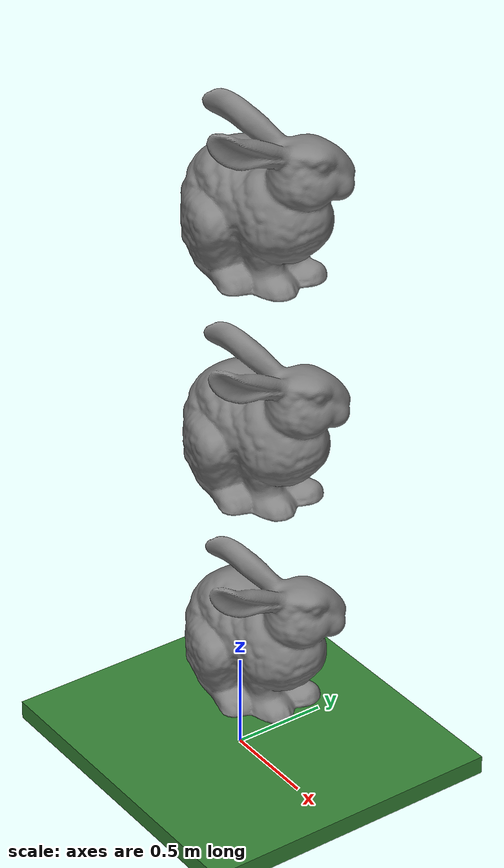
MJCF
<mujoco model="clutter">
  <option cone="elliptic" timestep="0.01"/>
  <asset>
    <mesh name="bunny_mesh" file="bunny.obj"/>
  </asset>
  <worldbody>
    <geom name="base" type="box" pos="0.0 0.0 0.0" size="20.0 20.0 0.05" rgba="0.2 0.5 0.2 1.0"/>
    <body>
      <joint type="free"/>
      <geom name="bunny1" type="mesh" pos="0.0 0.0 0.8" mesh="bunny_mesh"/>
    </body>
    <body>
      <joint type="free"/>
      <geom name="bunny2" type="mesh" pos="0.0 0.0 2.0" mesh="bunny_mesh"/>
    </body>
    <body>
      <joint type="free"/>
      <geom name="bunny3" type="mesh" pos="0.0 0.0 3.2" mesh="bunny_mesh"/>
    </body>
  </worldbody>

  <visual>
    <headlight diffuse="0.6 0.6 0.6" ambient="0.3 0.3 0.3" specular="0 0 0"/>
    <rgba haze="0.15 0.25 0.35 1"/>
    <global azimuth="120" elevation="-20"/>
  </visual>

  <asset>
    <texture type="skybox" builtin="gradient" rgb1="0.3 0.5 0.7" rgb2="0 0 0" width="512" height="3072"/>
    <texture type="2d" name="groundplane" builtin="checker" mark="edge" rgb1="0.2 0.3 0.4" rgb2="0.1 0.2 0.3"
      markrgb="0.8 0.8 0.8" width="300" height="300"/>
    <material name="groundplane" texture="groundplane" texuniform="true" texrepeat="5 5" reflectance="0.2"/>
  </asset>

  <worldbody>
    <light pos="0 0 1.5" dir="0 0 -1" directional="true"/>
  </worldbody>
</mujoco>
